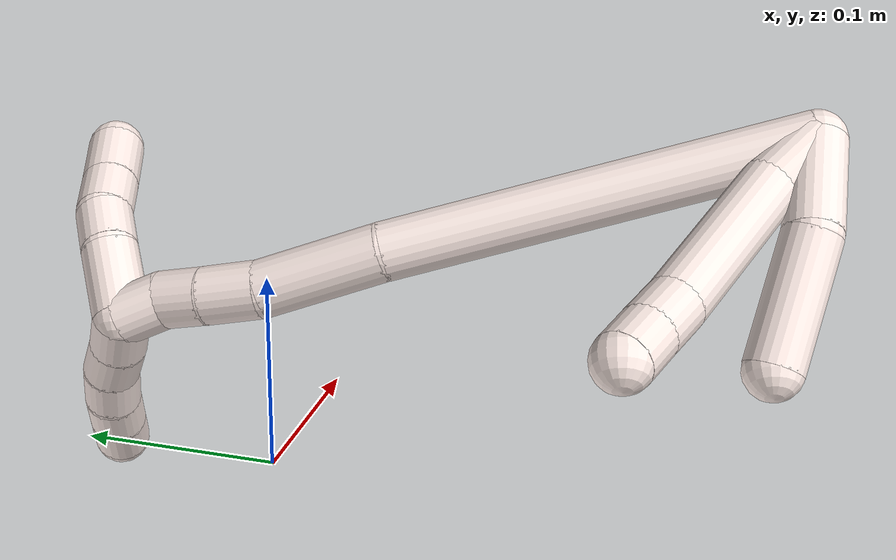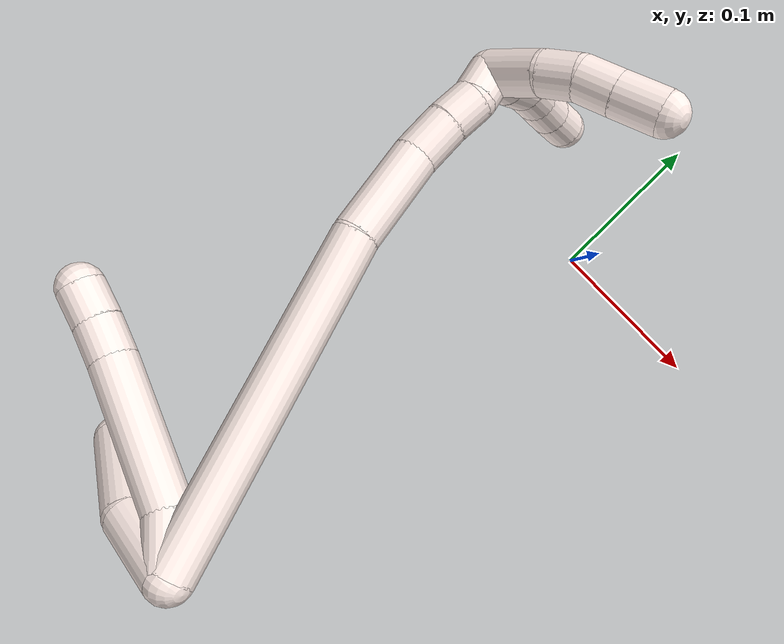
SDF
<sdf version="1.7">
 <world name="default">
  <model name="11">
   <static>0</static>
   <link name="11">
    <collision name="collision-cylinder-e_1_2_8">
     <pose>-0.00188 0.009586 -0.01081 -2.4161 -0.12938 0.338103</pose>
     <geometry><cylinder><radius>0.0125</radius><length>0.02914</length></cylinder></geometry>
     <surface>
      <friction><ode><mu>1.16</mu><mu2>1.16</mu2><slip1>0</slip1><slip2>0</slip2></ode></friction>
      <contact><ode><kp>1e+06</kp><kd>1</kd><max_vel>0</max_vel><min_depth>0.001</min_depth></ode></contact>
     </surface>
    </collision>
    <visual name="visual-cylinder-e_1_2_8">
     <pose>-0.00188 0.009586 -0.01081 -2.4161 -0.12938 0.338103</pose>
     <geometry><cylinder><radius>0.0125</radius><length>0.02914</length></cylinder></geometry>
     <material><ambient>1 0.933333 0.909804 1</ambient></material>
    </visual>
    <collision name="collision-cylinder-e_2_8_9">
     <pose>-0.018433 0.03642 -0.054444 -2.65781 -0.376804 1.31585</pose>
     <geometry><cylinder><radius>0.0125</radius><length>0.079755</length></cylinder></geometry>
     <surface>
      <friction><ode><mu>1.16</mu><mu2>1.16</mu2><slip1>0</slip1><slip2>0</slip2></ode></friction>
      <contact><ode><kp>1e+06</kp><kd>1</kd><max_vel>0</max_vel><min_depth>0.001</min_depth></ode></contact>
     </surface>
    </collision>
    <visual name="visual-cylinder-e_2_8_9">
     <pose>-0.018433 0.03642 -0.054444 -2.65781 -0.376804 1.31585</pose>
     <geometry><cylinder><radius>0.0125</radius><length>0.079755</length></cylinder></geometry>
     <material><ambient>1 0.933333 0.909804 1</ambient></material>
    </visual>
    <collision name="collision-cylinder-e_3_9_10">
     <pose>-0.037981 0.058062 -0.095426 -2.64735 -0.484359 1.54976</pose>
     <geometry><cylinder><radius>0.0125</radius><length>0.020942</length></cylinder></geometry>
     <surface>
      <friction><ode><mu>1.16</mu><mu2>1.16</mu2><slip1>0</slip1><slip2>0</slip2></ode></friction>
      <contact><ode><kp>1e+06</kp><kd>1</kd><max_vel>0</max_vel><min_depth>0.001</min_depth></ode></contact>
     </surface>
    </collision>
    <visual name="visual-cylinder-e_3_9_10">
     <pose>-0.037981 0.058062 -0.095426 -2.64735 -0.484359 1.54976</pose>
     <geometry><cylinder><radius>0.0125</radius><length>0.020942</length></cylinder></geometry>
     <material><ambient>1 0.933333 0.909804 1</ambient></material>
    </visual>
    <collision name="collision-cylinder-e_4_10_6">
     <pose>-0.047927 0.066287 -0.111412 -2.6867 -0.52696 1.72333</pose>
     <geometry><cylinder><radius>0.0125</radius><length>0.020163</length></cylinder></geometry>
     <surface>
      <friction><ode><mu>1.16</mu><mu2>1.16</mu2><slip1>0</slip1><slip2>0</slip2></ode></friction>
      <contact><ode><kp>1e+06</kp><kd>1</kd><max_vel>0</max_vel><min_depth>0.001</min_depth></ode></contact>
     </surface>
    </collision>
    <visual name="visual-cylinder-e_4_10_6">
     <pose>-0.047927 0.066287 -0.111412 -2.6867 -0.52696 1.72333</pose>
     <geometry><cylinder><radius>0.0125</radius><length>0.020163</length></cylinder></geometry>
     <material><ambient>1 0.933333 0.909804 1</ambient></material>
    </visual>
    <collision name="collision-cylinder-e_1_2_11">
     <pose>-0.00029 0.001826 -0.021572 -3.05713 -0.013407 0.31464</pose>
     <geometry><cylinder><radius>0.0125</radius><length>0.043301</length></cylinder></geometry>
     <surface>
      <friction><ode><mu>1.16</mu><mu2>1.16</mu2><slip1>0</slip1><slip2>0</slip2></ode></friction>
      <contact><ode><kp>1e+06</kp><kd>1</kd><max_vel>0</max_vel><min_depth>0.001</min_depth></ode></contact>
     </surface>
    </collision>
    <visual name="visual-cylinder-e_1_2_11">
     <pose>-0.00029 0.001826 -0.021572 -3.05713 -0.013407 0.31464</pose>
     <geometry><cylinder><radius>0.0125</radius><length>0.043301</length></cylinder></geometry>
     <material><ambient>1 0.933333 0.909804 1</ambient></material>
    </visual>
    <collision name="collision-cylinder-e_2_11_5">
     <pose>0.005024 0.012712 -0.069415 -2.80954 0.199022 -1.07467</pose>
     <geometry><cylinder><radius>0.0125</radius><length>0.056699</length></cylinder></geometry>
     <surface>
      <friction><ode><mu>1.16</mu><mu2>1.16</mu2><slip1>0</slip1><slip2>0</slip2></ode></friction>
      <contact><ode><kp>1e+06</kp><kd>1</kd><max_vel>0</max_vel><min_depth>0.001</min_depth></ode></contact>
     </surface>
    </collision>
    <visual name="visual-cylinder-e_2_11_5">
     <pose>0.005024 0.012712 -0.069415 -2.80954 0.199022 -1.07467</pose>
     <geometry><cylinder><radius>0.0125</radius><length>0.056699</length></cylinder></geometry>
     <material><ambient>1 0.933333 0.909804 1</ambient></material>
    </visual>
    <collision name="collision-cylinder-e_1_2_12">
     <pose>-0.005012 0.087501 -0.020861 -1.80483 -0.055665 0.070485</pose>
     <geometry><cylinder><radius>0.0125</radius><length>0.180186</length></cylinder></geometry>
     <surface>
      <friction><ode><mu>1.16</mu><mu2>1.16</mu2><slip1>0</slip1><slip2>0</slip2></ode></friction>
      <contact><ode><kp>1e+06</kp><kd>1</kd><max_vel>0</max_vel><min_depth>0.001</min_depth></ode></contact>
     </surface>
    </collision>
    <visual name="visual-cylinder-e_1_2_12">
     <pose>-0.005012 0.087501 -0.020861 -1.80483 -0.055665 0.070485</pose>
     <geometry><cylinder><radius>0.0125</radius><length>0.180186</length></cylinder></geometry>
     <material><ambient>1 0.933333 0.909804 1</ambient></material>
    </visual>
    <collision name="collision-cylinder-e_2_12_13">
     <pose>-0.007431 0.201495 -0.046856 -1.7622 0.095813 -0.11612</pose>
     <geometry><cylinder><radius>0.0125</radius><length>0.054221</length></cylinder></geometry>
     <surface>
      <friction><ode><mu>1.16</mu><mu2>1.16</mu2><slip1>0</slip1><slip2>0</slip2></ode></friction>
      <contact><ode><kp>1e+06</kp><kd>1</kd><max_vel>0</max_vel><min_depth>0.001</min_depth></ode></contact>
     </surface>
    </collision>
    <visual name="visual-cylinder-e_2_12_13">
     <pose>-0.007431 0.201495 -0.046856 -1.7622 0.095813 -0.11612</pose>
     <geometry><cylinder><radius>0.0125</radius><length>0.054221</length></cylinder></geometry>
     <material><ambient>1 0.933333 0.909804 1</ambient></material>
    </visual>
    <collision name="collision-cylinder-e_3_13_14">
     <pose>-0.004005 0.240548 -0.052136 -1.58246 0.066235 -0.067011</pose>
     <geometry><cylinder><radius>0.0125</radius><length>0.025175</length></cylinder></geometry>
     <surface>
      <friction><ode><mu>1.16</mu><mu2>1.16</mu2><slip1>0</slip1><slip2>0</slip2></ode></friction>
      <contact><ode><kp>1e+06</kp><kd>1</kd><max_vel>0</max_vel><min_depth>0.001</min_depth></ode></contact>
     </surface>
    </collision>
    <visual name="visual-cylinder-e_3_13_14">
     <pose>-0.004005 0.240548 -0.052136 -1.58246 0.066235 -0.067011</pose>
     <geometry><cylinder><radius>0.0125</radius><length>0.025175</length></cylinder></geometry>
     <material><ambient>1 0.933333 0.909804 1</ambient></material>
    </visual>
    <collision name="collision-cylinder-e_4_14_15">
     <pose>-0.001828 0.263047 -0.051746 -1.51692 0.134147 -0.127128</pose>
     <geometry><cylinder><radius>0.0125</radius><length>0.02009</length></cylinder></geometry>
     <surface>
      <friction><ode><mu>1.16</mu><mu2>1.16</mu2><slip1>0</slip1><slip2>0</slip2></ode></friction>
      <contact><ode><kp>1e+06</kp><kd>1</kd><max_vel>0</max_vel><min_depth>0.001</min_depth></ode></contact>
     </surface>
    </collision>
    <visual name="visual-cylinder-e_4_14_15">
     <pose>-0.001828 0.263047 -0.051746 -1.51692 0.134147 -0.127128</pose>
     <geometry><cylinder><radius>0.0125</radius><length>0.02009</length></cylinder></geometry>
     <material><ambient>1 0.933333 0.909804 1</ambient></material>
    </visual>
    <collision name="collision-cylinder-e_5_15_1">
     <pose>0.00057 0.282699 -0.054016 -1.85202 0.103949 -0.138133</pose>
     <geometry><cylinder><radius>0.0125</radius><length>0.020328</length></cylinder></geometry>
     <surface>
      <friction><ode><mu>1.16</mu><mu2>1.16</mu2><slip1>0</slip1><slip2>0</slip2></ode></friction>
      <contact><ode><kp>1e+06</kp><kd>1</kd><max_vel>0</max_vel><min_depth>0.001</min_depth></ode></contact>
     </surface>
    </collision>
    <visual name="visual-cylinder-e_5_15_1">
     <pose>0.00057 0.282699 -0.054016 -1.85202 0.103949 -0.138133</pose>
     <geometry><cylinder><radius>0.0125</radius><length>0.020328</length></cylinder></geometry>
     <material><ambient>1 0.933333 0.909804 1</ambient></material>
    </visual>
    <collision name="collision-cylinder-e_1_1_16">
     <pose>0.010527 0.296582 -0.058655 -1.98493 1.09775 -1.5056</pose>
     <geometry><cylinder><radius>0.0125</radius><length>0.02</length></cylinder></geometry>
     <surface>
      <friction><ode><mu>1.16</mu><mu2>1.16</mu2><slip1>0</slip1><slip2>0</slip2></ode></friction>
      <contact><ode><kp>1e+06</kp><kd>1</kd><max_vel>0</max_vel><min_depth>0.001</min_depth></ode></contact>
     </surface>
    </collision>
    <visual name="visual-cylinder-e_1_1_16">
     <pose>0.010527 0.296582 -0.058655 -1.98493 1.09775 -1.5056</pose>
     <geometry><cylinder><radius>0.0125</radius><length>0.02</length></cylinder></geometry>
     <material><ambient>1 0.933333 0.909804 1</ambient></material>
    </visual>
    <collision name="collision-cylinder-e_2_16_17">
     <pose>0.027978 0.305685 -0.062098 -1.8863 1.02542 -1.31974</pose>
     <geometry><cylinder><radius>0.0125</radius><length>0.02</length></cylinder></geometry>
     <surface>
      <friction><ode><mu>1.16</mu><mu2>1.16</mu2><slip1>0</slip1><slip2>0</slip2></ode></friction>
      <contact><ode><kp>1e+06</kp><kd>1</kd><max_vel>0</max_vel><min_depth>0.001</min_depth></ode></contact>
     </surface>
    </collision>
    <visual name="visual-cylinder-e_2_16_17">
     <pose>0.027978 0.305685 -0.062098 -1.8863 1.02542 -1.31974</pose>
     <geometry><cylinder><radius>0.0125</radius><length>0.02</length></cylinder></geometry>
     <material><ambient>1 0.933333 0.909804 1</ambient></material>
    </visual>
    <collision name="collision-cylinder-e_3_17_18">
     <pose>0.0458 0.313806 -0.065668 -2.12186 1.18696 -1.75736</pose>
     <geometry><cylinder><radius>0.0125</radius><length>0.02</length></cylinder></geometry>
     <surface>
      <friction><ode><mu>1.16</mu><mu2>1.16</mu2><slip1>0</slip1><slip2>0</slip2></ode></friction>
      <contact><ode><kp>1e+06</kp><kd>1</kd><max_vel>0</max_vel><min_depth>0.001</min_depth></ode></contact>
     </surface>
    </collision>
    <visual name="visual-cylinder-e_3_17_18">
     <pose>0.0458 0.313806 -0.065668 -2.12186 1.18696 -1.75736</pose>
     <geometry><cylinder><radius>0.0125</radius><length>0.02</length></cylinder></geometry>
     <material><ambient>1 0.933333 0.909804 1</ambient></material>
    </visual>
    <collision name="collision-cylinder-e_4_18_19">
     <pose>0.064683 0.319637 -0.068444 -1.87004 1.29086 -1.59095</pose>
     <geometry><cylinder><radius>0.0125</radius><length>0.02</length></cylinder></geometry>
     <surface>
      <friction><ode><mu>1.16</mu><mu2>1.16</mu2><slip1>0</slip1><slip2>0</slip2></ode></friction>
      <contact><ode><kp>1e+06</kp><kd>1</kd><max_vel>0</max_vel><min_depth>0.001</min_depth></ode></contact>
     </surface>
    </collision>
    <visual name="visual-cylinder-e_4_18_19">
     <pose>0.064683 0.319637 -0.068444 -1.87004 1.29086 -1.59095</pose>
     <geometry><cylinder><radius>0.0125</radius><length>0.02</length></cylinder></geometry>
     <material><ambient>1 0.933333 0.909804 1</ambient></material>
    </visual>
    <collision name="collision-cylinder-e_5_19_4">
     <pose>0.083885 0.325101 -0.069433 -1.63271 1.28399 -1.3439</pose>
     <geometry><cylinder><radius>0.0125</radius><length>0.02</length></cylinder></geometry>
     <surface>
      <friction><ode><mu>1.16</mu><mu2>1.16</mu2><slip1>0</slip1><slip2>0</slip2></ode></friction>
      <contact><ode><kp>1e+06</kp><kd>1</kd><max_vel>0</max_vel><min_depth>0.001</min_depth></ode></contact>
     </surface>
    </collision>
    <visual name="visual-cylinder-e_5_19_4">
     <pose>0.083885 0.325101 -0.069433 -1.63271 1.28399 -1.3439</pose>
     <geometry><cylinder><radius>0.0125</radius><length>0.02</length></cylinder></geometry>
     <material><ambient>1 0.933333 0.909804 1</ambient></material>
    </visual>
    <collision name="collision-cylinder-e_1_1_20">
     <pose>-0.000117 0.296741 -0.040899 -0.265497 -0.105174 0.014057</pose>
     <geometry><cylinder><radius>0.0125</radius><length>0.033185</length></cylinder></geometry>
     <surface>
      <friction><ode><mu>1.16</mu><mu2>1.16</mu2><slip1>0</slip1><slip2>0</slip2></ode></friction>
      <contact><ode><kp>1e+06</kp><kd>1</kd><max_vel>0</max_vel><min_depth>0.001</min_depth></ode></contact>
     </surface>
    </collision>
    <visual name="visual-cylinder-e_1_1_20">
     <pose>-0.000117 0.296741 -0.040899 -0.265497 -0.105174 0.014057</pose>
     <geometry><cylinder><radius>0.0125</radius><length>0.033185</length></cylinder></geometry>
     <material><ambient>1 0.933333 0.909804 1</ambient></material>
    </visual>
    <collision name="collision-cylinder-e_2_20_21">
     <pose>-0.000846 0.304139 -0.01526 -0.305869 0.099045 -0.015279</pose>
     <geometry><cylinder><radius>0.0125</radius><length>0.020481</length></cylinder></geometry>
     <surface>
      <friction><ode><mu>1.16</mu><mu2>1.16</mu2><slip1>0</slip1><slip2>0</slip2></ode></friction>
      <contact><ode><kp>1e+06</kp><kd>1</kd><max_vel>0</max_vel><min_depth>0.001</min_depth></ode></contact>
     </surface>
    </collision>
    <visual name="visual-cylinder-e_2_20_21">
     <pose>-0.000846 0.304139 -0.01526 -0.305869 0.099045 -0.015279</pose>
     <geometry><cylinder><radius>0.0125</radius><length>0.020481</length></cylinder></geometry>
     <material><ambient>1 0.933333 0.909804 1</ambient></material>
    </visual>
    <collision name="collision-cylinder-e_3_21_22">
     <pose>0.003322 0.308497 0.004251 -0.130925 0.309264 -0.020437</pose>
     <geometry><cylinder><radius>0.0125</radius><length>0.02074</length></cylinder></geometry>
     <surface>
      <friction><ode><mu>1.16</mu><mu2>1.16</mu2><slip1>0</slip1><slip2>0</slip2></ode></friction>
      <contact><ode><kp>1e+06</kp><kd>1</kd><max_vel>0</max_vel><min_depth>0.001</min_depth></ode></contact>
     </surface>
    </collision>
    <visual name="visual-cylinder-e_3_21_22">
     <pose>0.003322 0.308497 0.004251 -0.130925 0.309264 -0.020437</pose>
     <geometry><cylinder><radius>0.0125</radius><length>0.02074</length></cylinder></geometry>
     <material><ambient>1 0.933333 0.909804 1</ambient></material>
    </visual>
    <collision name="collision-cylinder-e_4_22_3">
     <pose>0.010333 0.311554 0.026119 -0.145339 0.305928 -0.022445</pose>
     <geometry><cylinder><radius>0.0125</radius><length>0.025595</length></cylinder></geometry>
     <surface>
      <friction><ode><mu>1.16</mu><mu2>1.16</mu2><slip1>0</slip1><slip2>0</slip2></ode></friction>
      <contact><ode><kp>1e+06</kp><kd>1</kd><max_vel>0</max_vel><min_depth>0.001</min_depth></ode></contact>
     </surface>
    </collision>
    <visual name="visual-cylinder-e_4_22_3">
     <pose>0.010333 0.311554 0.026119 -0.145339 0.305928 -0.022445</pose>
     <geometry><cylinder><radius>0.0125</radius><length>0.025595</length></cylinder></geometry>
     <material><ambient>1 0.933333 0.909804 1</ambient></material>
    </visual>
    <collision name="collision-sphere-3">
     <pose>0.014187 0.313322 0.038194 0 -0 0</pose>
     <geometry><sphere><radius>0.0125</radius></sphere></geometry>
     <surface>
      <friction><ode><mu>1.16</mu><mu2>1.16</mu2><slip1>0</slip1><slip2>0</slip2></ode></friction>
      <contact><ode><kp>1e+06</kp><kd>1</kd><max_vel>0</max_vel><min_depth>0.001</min_depth></ode></contact>
     </surface>
    </collision>
    <visual name="visual-sphere-3">
     <pose>0.014187 0.313322 0.038194 0 -0 0</pose>
     <geometry><sphere><radius>0.0125</radius></sphere></geometry>
     <material><ambient>1 0.933333 0.909804 1</ambient></material>
    </visual>
    <collision name="collision-sphere-22">
     <pose>0.006479 0.309787 0.014044 0 -0 0</pose>
     <geometry><sphere><radius>0.0125</radius></sphere></geometry>
     <surface>
      <friction><ode><mu>1.16</mu><mu2>1.16</mu2><slip1>0</slip1><slip2>0</slip2></ode></friction>
      <contact><ode><kp>1e+06</kp><kd>1</kd><max_vel>0</max_vel><min_depth>0.001</min_depth></ode></contact>
     </surface>
    </collision>
    <visual name="visual-sphere-22">
     <pose>0.006479 0.309787 0.014044 0 -0 0</pose>
     <geometry><sphere><radius>0.0125</radius></sphere></geometry>
     <material><ambient>1 0.933333 0.909804 1</ambient></material>
    </visual>
    <collision name="collision-sphere-21">
     <pose>0.000166 0.307208 -0.005542 0 -0 0</pose>
     <geometry><sphere><radius>0.0125</radius></sphere></geometry>
     <surface>
      <friction><ode><mu>1.16</mu><mu2>1.16</mu2><slip1>0</slip1><slip2>0</slip2></ode></friction>
      <contact><ode><kp>1e+06</kp><kd>1</kd><max_vel>0</max_vel><min_depth>0.001</min_depth></ode></contact>
     </surface>
    </collision>
    <visual name="visual-sphere-21">
     <pose>0.000166 0.307208 -0.005542 0 -0 0</pose>
     <geometry><sphere><radius>0.0125</radius></sphere></geometry>
     <material><ambient>1 0.933333 0.909804 1</ambient></material>
    </visual>
    <collision name="collision-sphere-20">
     <pose>-0.001859 0.301071 -0.024977 0 -0 0</pose>
     <geometry><sphere><radius>0.0125</radius></sphere></geometry>
     <surface>
      <friction><ode><mu>1.16</mu><mu2>1.16</mu2><slip1>0</slip1><slip2>0</slip2></ode></friction>
      <contact><ode><kp>1e+06</kp><kd>1</kd><max_vel>0</max_vel><min_depth>0.001</min_depth></ode></contact>
     </surface>
    </collision>
    <visual name="visual-sphere-20">
     <pose>-0.001859 0.301071 -0.024977 0 -0 0</pose>
     <geometry><sphere><radius>0.0125</radius></sphere></geometry>
     <material><ambient>1 0.933333 0.909804 1</ambient></material>
    </visual>
    <collision name="collision-sphere-4">
     <pose>0.093476 0.327924 -0.069608 0 -0 0</pose>
     <geometry><sphere><radius>0.0125</radius></sphere></geometry>
     <surface>
      <friction><ode><mu>1.16</mu><mu2>1.16</mu2><slip1>0</slip1><slip2>0</slip2></ode></friction>
      <contact><ode><kp>1e+06</kp><kd>1</kd><max_vel>0</max_vel><min_depth>0.001</min_depth></ode></contact>
     </surface>
    </collision>
    <visual name="visual-sphere-4">
     <pose>0.093476 0.327924 -0.069608 0 -0 0</pose>
     <geometry><sphere><radius>0.0125</radius></sphere></geometry>
     <material><ambient>1 0.933333 0.909804 1</ambient></material>
    </visual>
    <collision name="collision-sphere-11">
     <pose>-0.000581 0.003653 -0.043143 0 -0 0</pose>
     <geometry><sphere><radius>0.0125</radius></sphere></geometry>
     <surface>
      <friction><ode><mu>1.16</mu><mu2>1.16</mu2><slip1>0</slip1><slip2>0</slip2></ode></friction>
      <contact><ode><kp>1e+06</kp><kd>1</kd><max_vel>0</max_vel><min_depth>0.001</min_depth></ode></contact>
     </surface>
    </collision>
    <visual name="visual-sphere-11">
     <pose>-0.000581 0.003653 -0.043143 0 -0 0</pose>
     <geometry><sphere><radius>0.0125</radius></sphere></geometry>
     <material><ambient>1 0.933333 0.909804 1</ambient></material>
    </visual>
    <collision name="collision-sphere-6">
     <pose>-0.052997 0.070115 -0.11924 0 -0 0</pose>
     <geometry><sphere><radius>0.0125</radius></sphere></geometry>
     <surface>
      <friction><ode><mu>1.16</mu><mu2>1.16</mu2><slip1>0</slip1><slip2>0</slip2></ode></friction>
      <contact><ode><kp>1e+06</kp><kd>1</kd><max_vel>0</max_vel><min_depth>0.001</min_depth></ode></contact>
     </surface>
    </collision>
    <visual name="visual-sphere-6">
     <pose>-0.052997 0.070115 -0.11924 0 -0 0</pose>
     <geometry><sphere><radius>0.0125</radius></sphere></geometry>
     <material><ambient>1 0.933333 0.909804 1</ambient></material>
    </visual>
    <collision name="collision-sphere-10">
     <pose>-0.042857 0.062458 -0.103584 0 -0 0</pose>
     <geometry><sphere><radius>0.0125</radius></sphere></geometry>
     <surface>
      <friction><ode><mu>1.16</mu><mu2>1.16</mu2><slip1>0</slip1><slip2>0</slip2></ode></friction>
      <contact><ode><kp>1e+06</kp><kd>1</kd><max_vel>0</max_vel><min_depth>0.001</min_depth></ode></contact>
     </surface>
    </collision>
    <visual name="visual-sphere-10">
     <pose>-0.042857 0.062458 -0.103584 0 -0 0</pose>
     <geometry><sphere><radius>0.0125</radius></sphere></geometry>
     <material><ambient>1 0.933333 0.909804 1</ambient></material>
    </visual>
    <collision name="collision-sphere-9">
     <pose>-0.033105 0.053667 -0.087269 0 -0 0</pose>
     <geometry><sphere><radius>0.0125</radius></sphere></geometry>
     <surface>
      <friction><ode><mu>1.16</mu><mu2>1.16</mu2><slip1>0</slip1><slip2>0</slip2></ode></friction>
      <contact><ode><kp>1e+06</kp><kd>1</kd><max_vel>0</max_vel><min_depth>0.001</min_depth></ode></contact>
     </surface>
    </collision>
    <visual name="visual-sphere-9">
     <pose>-0.033105 0.053667 -0.087269 0 -0 0</pose>
     <geometry><sphere><radius>0.0125</radius></sphere></geometry>
     <material><ambient>1 0.933333 0.909804 1</ambient></material>
    </visual>
    <collision name="collision-sphere-2">
     <geometry><sphere><radius>0.0125</radius></sphere></geometry>
     <surface>
      <friction><ode><mu>1.16</mu><mu2>1.16</mu2><slip1>0</slip1><slip2>0</slip2></ode></friction>
      <contact><ode><kp>1e+06</kp><kd>1</kd><max_vel>0</max_vel><min_depth>0.001</min_depth></ode></contact>
     </surface>
    </collision>
    <visual name="visual-sphere-2">
     <geometry><sphere><radius>0.0125</radius></sphere></geometry>
     <material><ambient>1 0.933333 0.909804 1</ambient></material>
    </visual>
    <collision name="collision-sphere-19">
     <pose>0.074293 0.322277 -0.069258 0 -0 0</pose>
     <geometry><sphere><radius>0.0125</radius></sphere></geometry>
     <surface>
      <friction><ode><mu>1.16</mu><mu2>1.16</mu2><slip1>0</slip1><slip2>0</slip2></ode></friction>
      <contact><ode><kp>1e+06</kp><kd>1</kd><max_vel>0</max_vel><min_depth>0.001</min_depth></ode></contact>
     </surface>
    </collision>
    <visual name="visual-sphere-19">
     <pose>0.074293 0.322277 -0.069258 0 -0 0</pose>
     <geometry><sphere><radius>0.0125</radius></sphere></geometry>
     <material><ambient>1 0.933333 0.909804 1</ambient></material>
    </visual>
    <collision name="collision-sphere-8">
     <pose>-0.00376 0.019173 -0.021619 0 -0 0</pose>
     <geometry><sphere><radius>0.0125</radius></sphere></geometry>
     <surface>
      <friction><ode><mu>1.16</mu><mu2>1.16</mu2><slip1>0</slip1><slip2>0</slip2></ode></friction>
      <contact><ode><kp>1e+06</kp><kd>1</kd><max_vel>0</max_vel><min_depth>0.001</min_depth></ode></contact>
     </surface>
    </collision>
    <visual name="visual-sphere-8">
     <pose>-0.00376 0.019173 -0.021619 0 -0 0</pose>
     <geometry><sphere><radius>0.0125</radius></sphere></geometry>
     <material><ambient>1 0.933333 0.909804 1</ambient></material>
    </visual>
    <collision name="collision-sphere-5">
     <pose>0.010629 0.021771 -0.095687 0 -0 0</pose>
     <geometry><sphere><radius>0.0125</radius></sphere></geometry>
     <surface>
      <friction><ode><mu>1.16</mu><mu2>1.16</mu2><slip1>0</slip1><slip2>0</slip2></ode></friction>
      <contact><ode><kp>1e+06</kp><kd>1</kd><max_vel>0</max_vel><min_depth>0.001</min_depth></ode></contact>
     </surface>
    </collision>
    <visual name="visual-sphere-5">
     <pose>0.010629 0.021771 -0.095687 0 -0 0</pose>
     <geometry><sphere><radius>0.0125</radius></sphere></geometry>
     <material><ambient>1 0.933333 0.909804 1</ambient></material>
    </visual>
    <collision name="collision-sphere-12">
     <pose>-0.010025 0.175002 -0.041722 0 -0 0</pose>
     <geometry><sphere><radius>0.0125</radius></sphere></geometry>
     <surface>
      <friction><ode><mu>1.16</mu><mu2>1.16</mu2><slip1>0</slip1><slip2>0</slip2></ode></friction>
      <contact><ode><kp>1e+06</kp><kd>1</kd><max_vel>0</max_vel><min_depth>0.001</min_depth></ode></contact>
     </surface>
    </collision>
    <visual name="visual-sphere-12">
     <pose>-0.010025 0.175002 -0.041722 0 -0 0</pose>
     <geometry><sphere><radius>0.0125</radius></sphere></geometry>
     <material><ambient>1 0.933333 0.909804 1</ambient></material>
    </visual>
    <collision name="collision-sphere-13">
     <pose>-0.004838 0.227989 -0.051989 0 -0 0</pose>
     <geometry><sphere><radius>0.0125</radius></sphere></geometry>
     <surface>
      <friction><ode><mu>1.16</mu><mu2>1.16</mu2><slip1>0</slip1><slip2>0</slip2></ode></friction>
      <contact><ode><kp>1e+06</kp><kd>1</kd><max_vel>0</max_vel><min_depth>0.001</min_depth></ode></contact>
     </surface>
    </collision>
    <visual name="visual-sphere-13">
     <pose>-0.004838 0.227989 -0.051989 0 -0 0</pose>
     <geometry><sphere><radius>0.0125</radius></sphere></geometry>
     <material><ambient>1 0.933333 0.909804 1</ambient></material>
    </visual>
    <collision name="collision-sphere-14">
     <pose>-0.003171 0.253107 -0.052282 0 -0 0</pose>
     <geometry><sphere><radius>0.0125</radius></sphere></geometry>
     <surface>
      <friction><ode><mu>1.16</mu><mu2>1.16</mu2><slip1>0</slip1><slip2>0</slip2></ode></friction>
      <contact><ode><kp>1e+06</kp><kd>1</kd><max_vel>0</max_vel><min_depth>0.001</min_depth></ode></contact>
     </surface>
    </collision>
    <visual name="visual-sphere-14">
     <pose>-0.003171 0.253107 -0.052282 0 -0 0</pose>
     <geometry><sphere><radius>0.0125</radius></sphere></geometry>
     <material><ambient>1 0.933333 0.909804 1</ambient></material>
    </visual>
    <collision name="collision-sphere-15">
     <pose>-0.000484 0.272987 -0.05121 0 -0 0</pose>
     <geometry><sphere><radius>0.0125</radius></sphere></geometry>
     <surface>
      <friction><ode><mu>1.16</mu><mu2>1.16</mu2><slip1>0</slip1><slip2>0</slip2></ode></friction>
      <contact><ode><kp>1e+06</kp><kd>1</kd><max_vel>0</max_vel><min_depth>0.001</min_depth></ode></contact>
     </surface>
    </collision>
    <visual name="visual-sphere-15">
     <pose>-0.000484 0.272987 -0.05121 0 -0 0</pose>
     <geometry><sphere><radius>0.0125</radius></sphere></geometry>
     <material><ambient>1 0.933333 0.909804 1</ambient></material>
    </visual>
    <collision name="collision-sphere-1">
     <pose>0.001625 0.292412 -0.056822 0 -0 0</pose>
     <geometry><sphere><radius>0.0125</radius></sphere></geometry>
     <surface>
      <friction><ode><mu>1.16</mu><mu2>1.16</mu2><slip1>0</slip1><slip2>0</slip2></ode></friction>
      <contact><ode><kp>1e+06</kp><kd>1</kd><max_vel>0</max_vel><min_depth>0.001</min_depth></ode></contact>
     </surface>
    </collision>
    <visual name="visual-sphere-1">
     <pose>0.001625 0.292412 -0.056822 0 -0 0</pose>
     <geometry><sphere><radius>0.0125</radius></sphere></geometry>
     <material><ambient>1 0.933333 0.909804 1</ambient></material>
    </visual>
    <collision name="collision-sphere-18">
     <pose>0.055072 0.316997 -0.067629 0 -0 0</pose>
     <geometry><sphere><radius>0.0125</radius></sphere></geometry>
     <surface>
      <friction><ode><mu>1.16</mu><mu2>1.16</mu2><slip1>0</slip1><slip2>0</slip2></ode></friction>
      <contact><ode><kp>1e+06</kp><kd>1</kd><max_vel>0</max_vel><min_depth>0.001</min_depth></ode></contact>
     </surface>
    </collision>
    <visual name="visual-sphere-18">
     <pose>0.055072 0.316997 -0.067629 0 -0 0</pose>
     <geometry><sphere><radius>0.0125</radius></sphere></geometry>
     <material><ambient>1 0.933333 0.909804 1</ambient></material>
    </visual>
    <collision name="collision-sphere-16">
     <pose>0.019429 0.300753 -0.060488 0 -0 0</pose>
     <geometry><sphere><radius>0.0125</radius></sphere></geometry>
     <surface>
      <friction><ode><mu>1.16</mu><mu2>1.16</mu2><slip1>0</slip1><slip2>0</slip2></ode></friction>
      <contact><ode><kp>1e+06</kp><kd>1</kd><max_vel>0</max_vel><min_depth>0.001</min_depth></ode></contact>
     </surface>
    </collision>
    <visual name="visual-sphere-16">
     <pose>0.019429 0.300753 -0.060488 0 -0 0</pose>
     <geometry><sphere><radius>0.0125</radius></sphere></geometry>
     <material><ambient>1 0.933333 0.909804 1</ambient></material>
    </visual>
    <collision name="collision-sphere-17">
     <pose>0.036527 0.310616 -0.063708 0 -0 0</pose>
     <geometry><sphere><radius>0.0125</radius></sphere></geometry>
     <surface>
      <friction><ode><mu>1.16</mu><mu2>1.16</mu2><slip1>0</slip1><slip2>0</slip2></ode></friction>
      <contact><ode><kp>1e+06</kp><kd>1</kd><max_vel>0</max_vel><min_depth>0.001</min_depth></ode></contact>
     </surface>
    </collision>
    <visual name="visual-sphere-17">
     <pose>0.036527 0.310616 -0.063708 0 -0 0</pose>
     <geometry><sphere><radius>0.0125</radius></sphere></geometry>
     <material><ambient>1 0.933333 0.909804 1</ambient></material>
    </visual>
    <inertial>
     <pose>0.000698 0.149307 -0.041227 0 -0 0</pose>
     <mass>0.75</mass>
     <inertia>
      <ixx>0.000619</ixx>
      <ixy>0</ixy>
      <ixz>0</ixz>
      <iyy>-2.2e-05</iyy>
      <iyz>0</iyz>
      <izz>-0.000516</izz>
     </inertia>
    </inertial>
   </link>
   <pose>-0.042534 -0.254935 0.2084 -0.252191 0.867553 -0.1022</pose>
  </model>
 </world>
</sdf>
